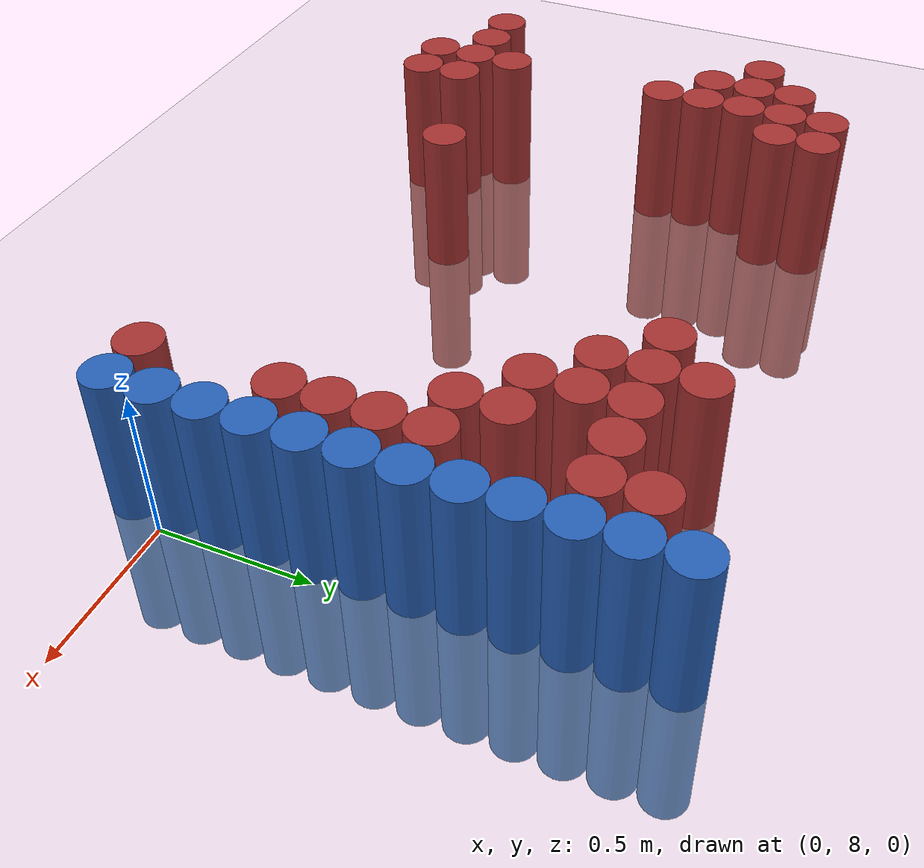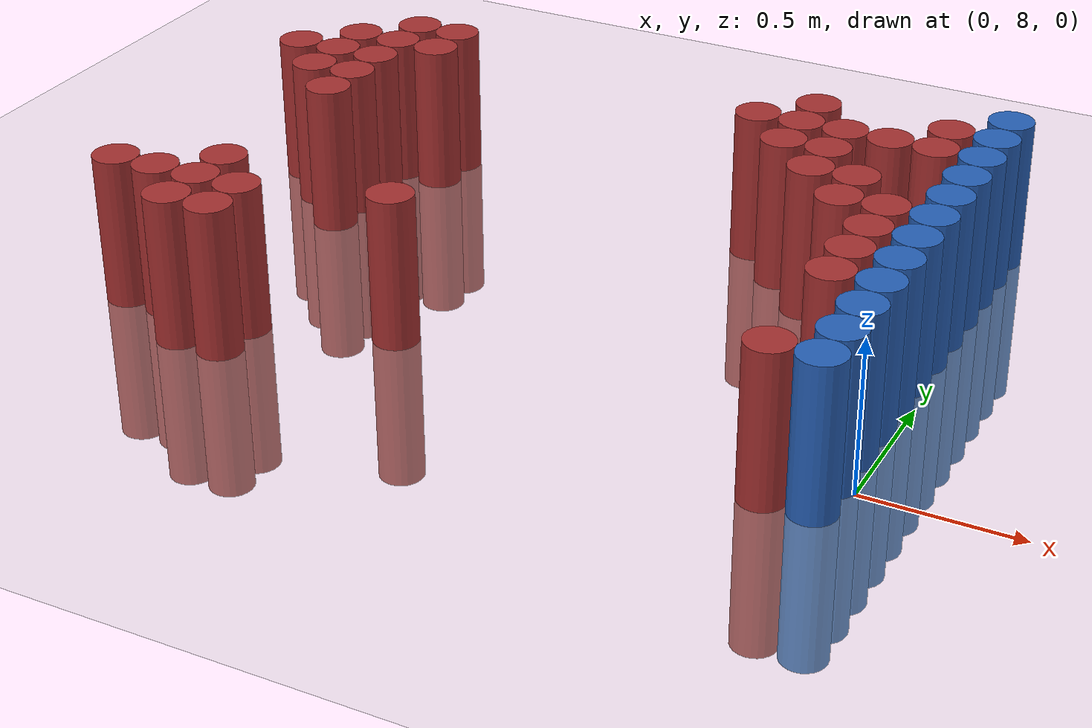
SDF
<sdf version="1.6">
 <world name="default">
  <model name="ground_plane">
   <static>1</static>
   <link name="link">
    <collision name="collision">
     <geometry><plane><normal>0 0 1</normal><size>100 100</size></plane></geometry>
     <surface><friction><ode><mu>100</mu><mu2>50</mu2></ode></friction></surface>
    </collision>
    <visual name="visual">
     <cast_shadows>0</cast_shadows>
     <geometry><plane><normal>0 0 1</normal><size>100 100</size></plane></geometry>
     <material>
      <script><uri>file://media/materials/scripts/gazebo.material</uri><name>Gazebo/Grey</name></script>
     </material>
    </visual>
   </link>
  </model>
  <model name="unit_cylinder_228">
   <static>1</static>
   <pose>-2.475000 8.025000 0.000000 0.000000 0.000000 0.000000</pose>
   <link name="link">
    <inertial>
     <mass>1</mass>
     <inertia><ixx>0.145833</ixx><ixy>0</ixy><ixz>0</ixz><iyy>0.145833</iyy><iyz>0</iyz><izz>0.125</izz></inertia>
    </inertial>
    <collision name="collision">
     <geometry><cylinder><radius>0.075000</radius><length>1</length></cylinder></geometry>
    </collision>
    <visual name="visual">
     <geometry><cylinder><radius>0.075000</radius><length>1</length></cylinder></geometry>
     <material>
      <ambient>0.648000 0.192000 0.192000 1</ambient>
      <diffuse>0.648000 0.192000 0.192000 1</diffuse>
     </material>
     <material>
      <script><name>Gazebo/Grey</name><uri>file://media/materials/scripts/gazebo.material</uri></script>
     </material>
    </visual>
   </link>
  </model>
  <model name="unit_cylinder_229">
   <static>1</static>
   <pose>-2.475000 9.075000 0.000000 0.000000 0.000000 0.000000</pose>
   <link name="link">
    <inertial>
     <mass>1</mass>
     <inertia><ixx>0.145833</ixx><ixy>0</ixy><ixz>0</ixz><iyy>0.145833</iyy><iyz>0</iyz><izz>0.125</izz></inertia>
    </inertial>
    <collision name="collision">
     <geometry><cylinder><radius>0.075000</radius><length>1</length></cylinder></geometry>
    </collision>
    <visual name="visual">
     <geometry><cylinder><radius>0.075000</radius><length>1</length></cylinder></geometry>
     <material>
      <ambient>0.648000 0.192000 0.192000 1</ambient>
      <diffuse>0.648000 0.192000 0.192000 1</diffuse>
     </material>
     <material>
      <script><name>Gazebo/Grey</name><uri>file://media/materials/scripts/gazebo.material</uri></script>
     </material>
    </visual>
   </link>
  </model>
  <model name="unit_cylinder_236">
   <static>1</static>
   <pose>-2.325000 8.025000 0.000000 0.000000 0.000000 0.000000</pose>
   <link name="link">
    <inertial>
     <mass>1</mass>
     <inertia><ixx>0.145833</ixx><ixy>0</ixy><ixz>0</ixz><iyy>0.145833</iyy><iyz>0</iyz><izz>0.125</izz></inertia>
    </inertial>
    <collision name="collision">
     <geometry><cylinder><radius>0.075000</radius><length>1</length></cylinder></geometry>
    </collision>
    <visual name="visual">
     <geometry><cylinder><radius>0.075000</radius><length>1</length></cylinder></geometry>
     <material>
      <ambient>0.648000 0.192000 0.192000 1</ambient>
      <diffuse>0.648000 0.192000 0.192000 1</diffuse>
     </material>
     <material>
      <script><name>Gazebo/Grey</name><uri>file://media/materials/scripts/gazebo.material</uri></script>
     </material>
    </visual>
   </link>
  </model>
  <model name="unit_cylinder_237">
   <static>1</static>
   <pose>-2.325000 8.925000 0.000000 0.000000 0.000000 0.000000</pose>
   <link name="link">
    <inertial>
     <mass>1</mass>
     <inertia><ixx>0.145833</ixx><ixy>0</ixy><ixz>0</ixz><iyy>0.145833</iyy><iyz>0</iyz><izz>0.125</izz></inertia>
    </inertial>
    <collision name="collision">
     <geometry><cylinder><radius>0.075000</radius><length>1</length></cylinder></geometry>
    </collision>
    <visual name="visual">
     <geometry><cylinder><radius>0.075000</radius><length>1</length></cylinder></geometry>
     <material>
      <ambient>0.648000 0.192000 0.192000 1</ambient>
      <diffuse>0.648000 0.192000 0.192000 1</diffuse>
     </material>
     <material>
      <script><name>Gazebo/Grey</name><uri>file://media/materials/scripts/gazebo.material</uri></script>
     </material>
    </visual>
   </link>
  </model>
  <model name="unit_cylinder_238">
   <static>1</static>
   <pose>-2.325000 9.075000 0.000000 0.000000 0.000000 0.000000</pose>
   <link name="link">
    <inertial>
     <mass>1</mass>
     <inertia><ixx>0.145833</ixx><ixy>0</ixy><ixz>0</ixz><iyy>0.145833</iyy><iyz>0</iyz><izz>0.125</izz></inertia>
    </inertial>
    <collision name="collision">
     <geometry><cylinder><radius>0.075000</radius><length>1</length></cylinder></geometry>
    </collision>
    <visual name="visual">
     <geometry><cylinder><radius>0.075000</radius><length>1</length></cylinder></geometry>
     <material>
      <ambient>0.648000 0.192000 0.192000 1</ambient>
      <diffuse>0.648000 0.192000 0.192000 1</diffuse>
     </material>
     <material>
      <script><name>Gazebo/Grey</name><uri>file://media/materials/scripts/gazebo.material</uri></script>
     </material>
    </visual>
   </link>
  </model>
  <model name="unit_cylinder_239">
   <static>1</static>
   <pose>-2.325000 9.225000 0.000000 0.000000 0.000000 0.000000</pose>
   <link name="link">
    <inertial>
     <mass>1</mass>
     <inertia><ixx>0.145833</ixx><ixy>0</ixy><ixz>0</ixz><iyy>0.145833</iyy><iyz>0</iyz><izz>0.125</izz></inertia>
    </inertial>
    <collision name="collision">
     <geometry><cylinder><radius>0.075000</radius><length>1</length></cylinder></geometry>
    </collision>
    <visual name="visual">
     <geometry><cylinder><radius>0.075000</radius><length>1</length></cylinder></geometry>
     <material>
      <ambient>0.648000 0.192000 0.192000 1</ambient>
      <diffuse>0.648000 0.192000 0.192000 1</diffuse>
     </material>
     <material>
      <script><name>Gazebo/Grey</name><uri>file://media/materials/scripts/gazebo.material</uri></script>
     </material>
    </visual>
   </link>
  </model>
  <model name="unit_cylinder_244">
   <static>1</static>
   <pose>-2.175000 7.875000 0.000000 0.000000 0.000000 0.000000</pose>
   <link name="link">
    <inertial>
     <mass>1</mass>
     <inertia><ixx>0.145833</ixx><ixy>0</ixy><ixz>0</ixz><iyy>0.145833</iyy><iyz>0</iyz><izz>0.125</izz></inertia>
    </inertial>
    <collision name="collision">
     <geometry><cylinder><radius>0.075000</radius><length>1</length></cylinder></geometry>
    </collision>
    <visual name="visual">
     <geometry><cylinder><radius>0.075000</radius><length>1</length></cylinder></geometry>
     <material>
      <ambient>0.648000 0.192000 0.192000 1</ambient>
      <diffuse>0.648000 0.192000 0.192000 1</diffuse>
     </material>
     <material>
      <script><name>Gazebo/Grey</name><uri>file://media/materials/scripts/gazebo.material</uri></script>
     </material>
    </visual>
   </link>
  </model>
  <model name="unit_cylinder_245">
   <static>1</static>
   <pose>-2.175000 8.025000 0.000000 0.000000 0.000000 0.000000</pose>
   <link name="link">
    <inertial>
     <mass>1</mass>
     <inertia><ixx>0.145833</ixx><ixy>0</ixy><ixz>0</ixz><iyy>0.145833</iyy><iyz>0</iyz><izz>0.125</izz></inertia>
    </inertial>
    <collision name="collision">
     <geometry><cylinder><radius>0.075000</radius><length>1</length></cylinder></geometry>
    </collision>
    <visual name="visual">
     <geometry><cylinder><radius>0.075000</radius><length>1</length></cylinder></geometry>
     <material>
      <ambient>0.648000 0.192000 0.192000 1</ambient>
      <diffuse>0.648000 0.192000 0.192000 1</diffuse>
     </material>
     <material>
      <script><name>Gazebo/Grey</name><uri>file://media/materials/scripts/gazebo.material</uri></script>
     </material>
    </visual>
   </link>
  </model>
  <model name="unit_cylinder_246">
   <static>1</static>
   <pose>-2.175000 8.175000 0.000000 0.000000 0.000000 0.000000</pose>
   <link name="link">
    <inertial>
     <mass>1</mass>
     <inertia><ixx>0.145833</ixx><ixy>0</ixy><ixz>0</ixz><iyy>0.145833</iyy><iyz>0</iyz><izz>0.125</izz></inertia>
    </inertial>
    <collision name="collision">
     <geometry><cylinder><radius>0.075000</radius><length>1</length></cylinder></geometry>
    </collision>
    <visual name="visual">
     <geometry><cylinder><radius>0.075000</radius><length>1</length></cylinder></geometry>
     <material>
      <ambient>0.648000 0.192000 0.192000 1</ambient>
      <diffuse>0.648000 0.192000 0.192000 1</diffuse>
     </material>
     <material>
      <script><name>Gazebo/Grey</name><uri>file://media/materials/scripts/gazebo.material</uri></script>
     </material>
    </visual>
   </link>
  </model>
  <model name="unit_cylinder_247">
   <static>1</static>
   <pose>-2.175000 8.775000 0.000000 0.000000 0.000000 0.000000</pose>
   <link name="link">
    <inertial>
     <mass>1</mass>
     <inertia><ixx>0.145833</ixx><ixy>0</ixy><ixz>0</ixz><iyy>0.145833</iyy><iyz>0</iyz><izz>0.125</izz></inertia>
    </inertial>
    <collision name="collision">
     <geometry><cylinder><radius>0.075000</radius><length>1</length></cylinder></geometry>
    </collision>
    <visual name="visual">
     <geometry><cylinder><radius>0.075000</radius><length>1</length></cylinder></geometry>
     <material>
      <ambient>0.648000 0.192000 0.192000 1</ambient>
      <diffuse>0.648000 0.192000 0.192000 1</diffuse>
     </material>
     <material>
      <script><name>Gazebo/Grey</name><uri>file://media/materials/scripts/gazebo.material</uri></script>
     </material>
    </visual>
   </link>
  </model>
  <model name="unit_cylinder_248">
   <static>1</static>
   <pose>-2.175000 8.925000 0.000000 0.000000 0.000000 0.000000</pose>
   <link name="link">
    <inertial>
     <mass>1</mass>
     <inertia><ixx>0.145833</ixx><ixy>0</ixy><ixz>0</ixz><iyy>0.145833</iyy><iyz>0</iyz><izz>0.125</izz></inertia>
    </inertial>
    <collision name="collision">
     <geometry><cylinder><radius>0.075000</radius><length>1</length></cylinder></geometry>
    </collision>
    <visual name="visual">
     <geometry><cylinder><radius>0.075000</radius><length>1</length></cylinder></geometry>
     <material>
      <ambient>0.648000 0.192000 0.192000 1</ambient>
      <diffuse>0.648000 0.192000 0.192000 1</diffuse>
     </material>
     <material>
      <script><name>Gazebo/Grey</name><uri>file://media/materials/scripts/gazebo.material</uri></script>
     </material>
    </visual>
   </link>
  </model>
  <model name="unit_cylinder_249">
   <static>1</static>
   <pose>-2.175000 9.075000 0.000000 0.000000 0.000000 0.000000</pose>
   <link name="link">
    <inertial>
     <mass>1</mass>
     <inertia><ixx>0.145833</ixx><ixy>0</ixy><ixz>0</ixz><iyy>0.145833</iyy><iyz>0</iyz><izz>0.125</izz></inertia>
    </inertial>
    <collision name="collision">
     <geometry><cylinder><radius>0.075000</radius><length>1</length></cylinder></geometry>
    </collision>
    <visual name="visual">
     <geometry><cylinder><radius>0.075000</radius><length>1</length></cylinder></geometry>
     <material>
      <ambient>0.648000 0.192000 0.192000 1</ambient>
      <diffuse>0.648000 0.192000 0.192000 1</diffuse>
     </material>
     <material>
      <script><name>Gazebo/Grey</name><uri>file://media/materials/scripts/gazebo.material</uri></script>
     </material>
    </visual>
   </link>
  </model>
  <model name="unit_cylinder_250">
   <static>1</static>
   <pose>-2.175000 9.225000 0.000000 0.000000 0.000000 0.000000</pose>
   <link name="link">
    <inertial>
     <mass>1</mass>
     <inertia><ixx>0.145833</ixx><ixy>0</ixy><ixz>0</ixz><iyy>0.145833</iyy><iyz>0</iyz><izz>0.125</izz></inertia>
    </inertial>
    <collision name="collision">
     <geometry><cylinder><radius>0.075000</radius><length>1</length></cylinder></geometry>
    </collision>
    <visual name="visual">
     <geometry><cylinder><radius>0.075000</radius><length>1</length></cylinder></geometry>
     <material>
      <ambient>0.648000 0.192000 0.192000 1</ambient>
      <diffuse>0.648000 0.192000 0.192000 1</diffuse>
     </material>
     <material>
      <script><name>Gazebo/Grey</name><uri>file://media/materials/scripts/gazebo.material</uri></script>
     </material>
    </visual>
   </link>
  </model>
  <model name="unit_cylinder_251">
   <static>1</static>
   <pose>-2.175000 9.375000 0.000000 0.000000 0.000000 0.000000</pose>
   <link name="link">
    <inertial>
     <mass>1</mass>
     <inertia><ixx>0.145833</ixx><ixy>0</ixy><ixz>0</ixz><iyy>0.145833</iyy><iyz>0</iyz><izz>0.125</izz></inertia>
    </inertial>
    <collision name="collision">
     <geometry><cylinder><radius>0.075000</radius><length>1</length></cylinder></geometry>
    </collision>
    <visual name="visual">
     <geometry><cylinder><radius>0.075000</radius><length>1</length></cylinder></geometry>
     <material>
      <ambient>0.648000 0.192000 0.192000 1</ambient>
      <diffuse>0.648000 0.192000 0.192000 1</diffuse>
     </material>
     <material>
      <script><name>Gazebo/Grey</name><uri>file://media/materials/scripts/gazebo.material</uri></script>
     </material>
    </visual>
   </link>
  </model>
  <model name="unit_cylinder_252">
   <static>1</static>
   <pose>-2.025000 7.875000 0.000000 0.000000 0.000000 0.000000</pose>
   <link name="link">
    <inertial>
     <mass>1</mass>
     <inertia><ixx>0.145833</ixx><ixy>0</ixy><ixz>0</ixz><iyy>0.145833</iyy><iyz>0</iyz><izz>0.125</izz></inertia>
    </inertial>
    <collision name="collision">
     <geometry><cylinder><radius>0.075000</radius><length>1</length></cylinder></geometry>
    </collision>
    <visual name="visual">
     <geometry><cylinder><radius>0.075000</radius><length>1</length></cylinder></geometry>
     <material>
      <ambient>0.648000 0.192000 0.192000 1</ambient>
      <diffuse>0.648000 0.192000 0.192000 1</diffuse>
     </material>
     <material>
      <script><name>Gazebo/Grey</name><uri>file://media/materials/scripts/gazebo.material</uri></script>
     </material>
    </visual>
   </link>
  </model>
  <model name="unit_cylinder_253">
   <static>1</static>
   <pose>-2.025000 8.025000 0.000000 0.000000 0.000000 0.000000</pose>
   <link name="link">
    <inertial>
     <mass>1</mass>
     <inertia><ixx>0.145833</ixx><ixy>0</ixy><ixz>0</ixz><iyy>0.145833</iyy><iyz>0</iyz><izz>0.125</izz></inertia>
    </inertial>
    <collision name="collision">
     <geometry><cylinder><radius>0.075000</radius><length>1</length></cylinder></geometry>
    </collision>
    <visual name="visual">
     <geometry><cylinder><radius>0.075000</radius><length>1</length></cylinder></geometry>
     <material>
      <ambient>0.648000 0.192000 0.192000 1</ambient>
      <diffuse>0.648000 0.192000 0.192000 1</diffuse>
     </material>
     <material>
      <script><name>Gazebo/Grey</name><uri>file://media/materials/scripts/gazebo.material</uri></script>
     </material>
    </visual>
   </link>
  </model>
  <model name="unit_cylinder_254">
   <static>1</static>
   <pose>-2.025000 9.225000 0.000000 0.000000 0.000000 0.000000</pose>
   <link name="link">
    <inertial>
     <mass>1</mass>
     <inertia><ixx>0.145833</ixx><ixy>0</ixy><ixz>0</ixz><iyy>0.145833</iyy><iyz>0</iyz><izz>0.125</izz></inertia>
    </inertial>
    <collision name="collision">
     <geometry><cylinder><radius>0.075000</radius><length>1</length></cylinder></geometry>
    </collision>
    <visual name="visual">
     <geometry><cylinder><radius>0.075000</radius><length>1</length></cylinder></geometry>
     <material>
      <ambient>0.648000 0.192000 0.192000 1</ambient>
      <diffuse>0.648000 0.192000 0.192000 1</diffuse>
     </material>
     <material>
      <script><name>Gazebo/Grey</name><uri>file://media/materials/scripts/gazebo.material</uri></script>
     </material>
    </visual>
   </link>
  </model>
  <model name="unit_cylinder_255">
   <static>1</static>
   <pose>-2.025000 9.375000 0.000000 0.000000 0.000000 0.000000</pose>
   <link name="link">
    <inertial>
     <mass>1</mass>
     <inertia><ixx>0.145833</ixx><ixy>0</ixy><ixz>0</ixz><iyy>0.145833</iyy><iyz>0</iyz><izz>0.125</izz></inertia>
    </inertial>
    <collision name="collision">
     <geometry><cylinder><radius>0.075000</radius><length>1</length></cylinder></geometry>
    </collision>
    <visual name="visual">
     <geometry><cylinder><radius>0.075000</radius><length>1</length></cylinder></geometry>
     <material>
      <ambient>0.648000 0.192000 0.192000 1</ambient>
      <diffuse>0.648000 0.192000 0.192000 1</diffuse>
     </material>
     <material>
      <script><name>Gazebo/Grey</name><uri>file://media/materials/scripts/gazebo.material</uri></script>
     </material>
    </visual>
   </link>
  </model>
  <model name="unit_cylinder_262">
   <static>1</static>
   <pose>-1.575000 8.175000 0.000000 0.000000 0.000000 0.000000</pose>
   <link name="link">
    <inertial>
     <mass>1</mass>
     <inertia><ixx>0.145833</ixx><ixy>0</ixy><ixz>0</ixz><iyy>0.145833</iyy><iyz>0</iyz><izz>0.125</izz></inertia>
    </inertial>
    <collision name="collision">
     <geometry><cylinder><radius>0.075000</radius><length>1</length></cylinder></geometry>
    </collision>
    <visual name="visual">
     <geometry><cylinder><radius>0.075000</radius><length>1</length></cylinder></geometry>
     <material>
      <ambient>0.648000 0.192000 0.192000 1</ambient>
      <diffuse>0.648000 0.192000 0.192000 1</diffuse>
     </material>
     <material>
      <script><name>Gazebo/Grey</name><uri>file://media/materials/scripts/gazebo.material</uri></script>
     </material>
    </visual>
   </link>
  </model>
  <model name="unit_cylinder_274">
   <static>1</static>
   <pose>-0.825000 9.225000 0.000000 0.000000 0.000000 0.000000</pose>
   <link name="link">
    <inertial>
     <mass>1</mass>
     <inertia><ixx>0.145833</ixx><ixy>0</ixy><ixz>0</ixz><iyy>0.145833</iyy><iyz>0</iyz><izz>0.125</izz></inertia>
    </inertial>
    <collision name="collision">
     <geometry><cylinder><radius>0.075000</radius><length>1</length></cylinder></geometry>
    </collision>
    <visual name="visual">
     <geometry><cylinder><radius>0.075000</radius><length>1</length></cylinder></geometry>
     <material>
      <ambient>0.648000 0.192000 0.192000 1</ambient>
      <diffuse>0.648000 0.192000 0.192000 1</diffuse>
     </material>
     <material>
      <script><name>Gazebo/Grey</name><uri>file://media/materials/scripts/gazebo.material</uri></script>
     </material>
    </visual>
   </link>
  </model>
  <model name="unit_cylinder_277">
   <static>1</static>
   <pose>-0.675000 9.075000 0.000000 0.000000 0.000000 0.000000</pose>
   <link name="link">
    <inertial>
     <mass>1</mass>
     <inertia><ixx>0.145833</ixx><ixy>0</ixy><ixz>0</ixz><iyy>0.145833</iyy><iyz>0</iyz><izz>0.125</izz></inertia>
    </inertial>
    <collision name="collision">
     <geometry><cylinder><radius>0.075000</radius><length>1</length></cylinder></geometry>
    </collision>
    <visual name="visual">
     <geometry><cylinder><radius>0.075000</radius><length>1</length></cylinder></geometry>
     <material>
      <ambient>0.648000 0.192000 0.192000 1</ambient>
      <diffuse>0.648000 0.192000 0.192000 1</diffuse>
     </material>
     <material>
      <script><name>Gazebo/Grey</name><uri>file://media/materials/scripts/gazebo.material</uri></script>
     </material>
    </visual>
   </link>
  </model>
  <model name="unit_cylinder_278">
   <static>1</static>
   <pose>-0.675000 9.225000 0.000000 0.000000 0.000000 0.000000</pose>
   <link name="link">
    <inertial>
     <mass>1</mass>
     <inertia><ixx>0.145833</ixx><ixy>0</ixy><ixz>0</ixz><iyy>0.145833</iyy><iyz>0</iyz><izz>0.125</izz></inertia>
    </inertial>
    <collision name="collision">
     <geometry><cylinder><radius>0.075000</radius><length>1</length></cylinder></geometry>
    </collision>
    <visual name="visual">
     <geometry><cylinder><radius>0.075000</radius><length>1</length></cylinder></geometry>
     <material>
      <ambient>0.648000 0.192000 0.192000 1</ambient>
      <diffuse>0.648000 0.192000 0.192000 1</diffuse>
     </material>
     <material>
      <script><name>Gazebo/Grey</name><uri>file://media/materials/scripts/gazebo.material</uri></script>
     </material>
    </visual>
   </link>
  </model>
  <model name="unit_cylinder_279">
   <static>1</static>
   <pose>-0.675000 9.375000 0.000000 0.000000 0.000000 0.000000</pose>
   <link name="link">
    <inertial>
     <mass>1</mass>
     <inertia><ixx>0.145833</ixx><ixy>0</ixy><ixz>0</ixz><iyy>0.145833</iyy><iyz>0</iyz><izz>0.125</izz></inertia>
    </inertial>
    <collision name="collision">
     <geometry><cylinder><radius>0.075000</radius><length>1</length></cylinder></geometry>
    </collision>
    <visual name="visual">
     <geometry><cylinder><radius>0.075000</radius><length>1</length></cylinder></geometry>
     <material>
      <ambient>0.648000 0.192000 0.192000 1</ambient>
      <diffuse>0.648000 0.192000 0.192000 1</diffuse>
     </material>
     <material>
      <script><name>Gazebo/Grey</name><uri>file://media/materials/scripts/gazebo.material</uri></script>
     </material>
    </visual>
   </link>
  </model>
  <model name="unit_cylinder_282">
   <static>1</static>
   <pose>-0.525000 8.925000 0.000000 0.000000 0.000000 0.000000</pose>
   <link name="link">
    <inertial>
     <mass>1</mass>
     <inertia><ixx>0.145833</ixx><ixy>0</ixy><ixz>0</ixz><iyy>0.145833</iyy><iyz>0</iyz><izz>0.125</izz></inertia>
    </inertial>
    <collision name="collision">
     <geometry><cylinder><radius>0.075000</radius><length>1</length></cylinder></geometry>
    </collision>
    <visual name="visual">
     <geometry><cylinder><radius>0.075000</radius><length>1</length></cylinder></geometry>
     <material>
      <ambient>0.648000 0.192000 0.192000 1</ambient>
      <diffuse>0.648000 0.192000 0.192000 1</diffuse>
     </material>
     <material>
      <script><name>Gazebo/Grey</name><uri>file://media/materials/scripts/gazebo.material</uri></script>
     </material>
    </visual>
   </link>
  </model>
  <model name="unit_cylinder_283">
   <static>1</static>
   <pose>-0.525000 9.075000 0.000000 0.000000 0.000000 0.000000</pose>
   <link name="link">
    <inertial>
     <mass>1</mass>
     <inertia><ixx>0.145833</ixx><ixy>0</ixy><ixz>0</ixz><iyy>0.145833</iyy><iyz>0</iyz><izz>0.125</izz></inertia>
    </inertial>
    <collision name="collision">
     <geometry><cylinder><radius>0.075000</radius><length>1</length></cylinder></geometry>
    </collision>
    <visual name="visual">
     <geometry><cylinder><radius>0.075000</radius><length>1</length></cylinder></geometry>
     <material>
      <ambient>0.648000 0.192000 0.192000 1</ambient>
      <diffuse>0.648000 0.192000 0.192000 1</diffuse>
     </material>
     <material>
      <script><name>Gazebo/Grey</name><uri>file://media/materials/scripts/gazebo.material</uri></script>
     </material>
    </visual>
   </link>
  </model>
  <model name="unit_cylinder_284">
   <static>1</static>
   <pose>-0.525000 9.225000 0.000000 0.000000 0.000000 0.000000</pose>
   <link name="link">
    <inertial>
     <mass>1</mass>
     <inertia><ixx>0.145833</ixx><ixy>0</ixy><ixz>0</ixz><iyy>0.145833</iyy><iyz>0</iyz><izz>0.125</izz></inertia>
    </inertial>
    <collision name="collision">
     <geometry><cylinder><radius>0.075000</radius><length>1</length></cylinder></geometry>
    </collision>
    <visual name="visual">
     <geometry><cylinder><radius>0.075000</radius><length>1</length></cylinder></geometry>
     <material>
      <ambient>0.648000 0.192000 0.192000 1</ambient>
      <diffuse>0.648000 0.192000 0.192000 1</diffuse>
     </material>
     <material>
      <script><name>Gazebo/Grey</name><uri>file://media/materials/scripts/gazebo.material</uri></script>
     </material>
    </visual>
   </link>
  </model>
  <model name="unit_cylinder_289">
   <static>1</static>
   <pose>-0.375000 8.775000 0.000000 0.000000 0.000000 0.000000</pose>
   <link name="link">
    <inertial>
     <mass>1</mass>
     <inertia><ixx>0.145833</ixx><ixy>0</ixy><ixz>0</ixz><iyy>0.145833</iyy><iyz>0</iyz><izz>0.125</izz></inertia>
    </inertial>
    <collision name="collision">
     <geometry><cylinder><radius>0.075000</radius><length>1</length></cylinder></geometry>
    </collision>
    <visual name="visual">
     <geometry><cylinder><radius>0.075000</radius><length>1</length></cylinder></geometry>
     <material>
      <ambient>0.648000 0.192000 0.192000 1</ambient>
      <diffuse>0.648000 0.192000 0.192000 1</diffuse>
     </material>
     <material>
      <script><name>Gazebo/Grey</name><uri>file://media/materials/scripts/gazebo.material</uri></script>
     </material>
    </visual>
   </link>
  </model>
  <model name="unit_cylinder_290">
   <static>1</static>
   <pose>-0.375000 8.925000 0.000000 0.000000 0.000000 0.000000</pose>
   <link name="link">
    <inertial>
     <mass>1</mass>
     <inertia><ixx>0.145833</ixx><ixy>0</ixy><ixz>0</ixz><iyy>0.145833</iyy><iyz>0</iyz><izz>0.125</izz></inertia>
    </inertial>
    <collision name="collision">
     <geometry><cylinder><radius>0.075000</radius><length>1</length></cylinder></geometry>
    </collision>
    <visual name="visual">
     <geometry><cylinder><radius>0.075000</radius><length>1</length></cylinder></geometry>
     <material>
      <ambient>0.648000 0.192000 0.192000 1</ambient>
      <diffuse>0.648000 0.192000 0.192000 1</diffuse>
     </material>
     <material>
      <script><name>Gazebo/Grey</name><uri>file://media/materials/scripts/gazebo.material</uri></script>
     </material>
    </visual>
   </link>
  </model>
  <model name="unit_cylinder_291">
   <static>1</static>
   <pose>-0.375000 9.225000 0.000000 0.000000 0.000000 0.000000</pose>
   <link name="link">
    <inertial>
     <mass>1</mass>
     <inertia><ixx>0.145833</ixx><ixy>0</ixy><ixz>0</ixz><iyy>0.145833</iyy><iyz>0</iyz><izz>0.125</izz></inertia>
    </inertial>
    <collision name="collision">
     <geometry><cylinder><radius>0.075000</radius><length>1</length></cylinder></geometry>
    </collision>
    <visual name="visual">
     <geometry><cylinder><radius>0.075000</radius><length>1</length></cylinder></geometry>
     <material>
      <ambient>0.648000 0.192000 0.192000 1</ambient>
      <diffuse>0.648000 0.192000 0.192000 1</diffuse>
     </material>
     <material>
      <script><name>Gazebo/Grey</name><uri>file://media/materials/scripts/gazebo.material</uri></script>
     </material>
    </visual>
   </link>
  </model>
  <model name="unit_cylinder_300">
   <static>1</static>
   <pose>-0.225000 7.875000 0.000000 0.000000 0.000000 0.000000</pose>
   <link name="link">
    <inertial>
     <mass>1</mass>
     <inertia><ixx>0.145833</ixx><ixy>0</ixy><ixz>0</ixz><iyy>0.145833</iyy><iyz>0</iyz><izz>0.125</izz></inertia>
    </inertial>
    <collision name="collision">
     <geometry><cylinder><radius>0.075000</radius><length>1</length></cylinder></geometry>
    </collision>
    <visual name="visual">
     <geometry><cylinder><radius>0.075000</radius><length>1</length></cylinder></geometry>
     <material>
      <ambient>0.648000 0.192000 0.192000 1</ambient>
      <diffuse>0.648000 0.192000 0.192000 1</diffuse>
     </material>
     <material>
      <script><name>Gazebo/Grey</name><uri>file://media/materials/scripts/gazebo.material</uri></script>
     </material>
    </visual>
   </link>
  </model>
  <model name="unit_cylinder_301">
   <static>1</static>
   <pose>-0.225000 8.325000 0.000000 0.000000 0.000000 0.000000</pose>
   <link name="link">
    <inertial>
     <mass>1</mass>
     <inertia><ixx>0.145833</ixx><ixy>0</ixy><ixz>0</ixz><iyy>0.145833</iyy><iyz>0</iyz><izz>0.125</izz></inertia>
    </inertial>
    <collision name="collision">
     <geometry><cylinder><radius>0.075000</radius><length>1</length></cylinder></geometry>
    </collision>
    <visual name="visual">
     <geometry><cylinder><radius>0.075000</radius><length>1</length></cylinder></geometry>
     <material>
      <ambient>0.648000 0.192000 0.192000 1</ambient>
      <diffuse>0.648000 0.192000 0.192000 1</diffuse>
     </material>
     <material>
      <script><name>Gazebo/Grey</name><uri>file://media/materials/scripts/gazebo.material</uri></script>
     </material>
    </visual>
   </link>
  </model>
  <model name="unit_cylinder_302">
   <static>1</static>
   <pose>-0.225000 8.475000 0.000000 0.000000 0.000000 0.000000</pose>
   <link name="link">
    <inertial>
     <mass>1</mass>
     <inertia><ixx>0.145833</ixx><ixy>0</ixy><ixz>0</ixz><iyy>0.145833</iyy><iyz>0</iyz><izz>0.125</izz></inertia>
    </inertial>
    <collision name="collision">
     <geometry><cylinder><radius>0.075000</radius><length>1</length></cylinder></geometry>
    </collision>
    <visual name="visual">
     <geometry><cylinder><radius>0.075000</radius><length>1</length></cylinder></geometry>
     <material>
      <ambient>0.648000 0.192000 0.192000 1</ambient>
      <diffuse>0.648000 0.192000 0.192000 1</diffuse>
     </material>
     <material>
      <script><name>Gazebo/Grey</name><uri>file://media/materials/scripts/gazebo.material</uri></script>
     </material>
    </visual>
   </link>
  </model>
  <model name="unit_cylinder_303">
   <static>1</static>
   <pose>-0.225000 8.625000 0.000000 0.000000 0.000000 0.000000</pose>
   <link name="link">
    <inertial>
     <mass>1</mass>
     <inertia><ixx>0.145833</ixx><ixy>0</ixy><ixz>0</ixz><iyy>0.145833</iyy><iyz>0</iyz><izz>0.125</izz></inertia>
    </inertial>
    <collision name="collision">
     <geometry><cylinder><radius>0.075000</radius><length>1</length></cylinder></geometry>
    </collision>
    <visual name="visual">
     <geometry><cylinder><radius>0.075000</radius><length>1</length></cylinder></geometry>
     <material>
      <ambient>0.648000 0.192000 0.192000 1</ambient>
      <diffuse>0.648000 0.192000 0.192000 1</diffuse>
     </material>
     <material>
      <script><name>Gazebo/Grey</name><uri>file://media/materials/scripts/gazebo.material</uri></script>
     </material>
    </visual>
   </link>
  </model>
  <model name="unit_cylinder_304">
   <static>1</static>
   <pose>-0.225000 8.775000 0.000000 0.000000 0.000000 0.000000</pose>
   <link name="link">
    <inertial>
     <mass>1</mass>
     <inertia><ixx>0.145833</ixx><ixy>0</ixy><ixz>0</ixz><iyy>0.145833</iyy><iyz>0</iyz><izz>0.125</izz></inertia>
    </inertial>
    <collision name="collision">
     <geometry><cylinder><radius>0.075000</radius><length>1</length></cylinder></geometry>
    </collision>
    <visual name="visual">
     <geometry><cylinder><radius>0.075000</radius><length>1</length></cylinder></geometry>
     <material>
      <ambient>0.648000 0.192000 0.192000 1</ambient>
      <diffuse>0.648000 0.192000 0.192000 1</diffuse>
     </material>
     <material>
      <script><name>Gazebo/Grey</name><uri>file://media/materials/scripts/gazebo.material</uri></script>
     </material>
    </visual>
   </link>
  </model>
  <model name="unit_cylinder_305">
   <static>1</static>
   <pose>-0.225000 9.225000 0.000000 0.000000 0.000000 0.000000</pose>
   <link name="link">
    <inertial>
     <mass>1</mass>
     <inertia><ixx>0.145833</ixx><ixy>0</ixy><ixz>0</ixz><iyy>0.145833</iyy><iyz>0</iyz><izz>0.125</izz></inertia>
    </inertial>
    <collision name="collision">
     <geometry><cylinder><radius>0.075000</radius><length>1</length></cylinder></geometry>
    </collision>
    <visual name="visual">
     <geometry><cylinder><radius>0.075000</radius><length>1</length></cylinder></geometry>
     <material>
      <ambient>0.648000 0.192000 0.192000 1</ambient>
      <diffuse>0.648000 0.192000 0.192000 1</diffuse>
     </material>
     <material>
      <script><name>Gazebo/Grey</name><uri>file://media/materials/scripts/gazebo.material</uri></script>
     </material>
    </visual>
   </link>
  </model>
  <model name="unit_cylinder_306">
   <static>1</static>
   <pose>-0.225000 9.375000 0.000000 0.000000 0.000000 0.000000</pose>
   <link name="link">
    <inertial>
     <mass>1</mass>
     <inertia><ixx>0.145833</ixx><ixy>0</ixy><ixz>0</ixz><iyy>0.145833</iyy><iyz>0</iyz><izz>0.125</izz></inertia>
    </inertial>
    <collision name="collision">
     <geometry><cylinder><radius>0.075000</radius><length>1</length></cylinder></geometry>
    </collision>
    <visual name="visual">
     <geometry><cylinder><radius>0.075000</radius><length>1</length></cylinder></geometry>
     <material>
      <ambient>0.648000 0.192000 0.192000 1</ambient>
      <diffuse>0.648000 0.192000 0.192000 1</diffuse>
     </material>
     <material>
      <script><name>Gazebo/Grey</name><uri>file://media/materials/scripts/gazebo.material</uri></script>
     </material>
    </visual>
   </link>
  </model>
  <model name="unit_cylinder_325">
   <static>1</static>
   <pose>-0.075000 7.875000 0.000000 0.000000 0.000000 0.000000</pose>
   <link name="link">
    <inertial>
     <mass>1</mass>
     <inertia><ixx>0.145833</ixx><ixy>0</ixy><ixz>0</ixz><iyy>0.145833</iyy><iyz>0</iyz><izz>0.125</izz></inertia>
    </inertial>
    <collision name="collision">
     <geometry><cylinder><radius>0.075000</radius><length>1</length></cylinder></geometry>
    </collision>
    <visual name="visual">
     <geometry><cylinder><radius>0.075000</radius><length>1</length></cylinder></geometry>
     <material>
      <ambient>0.152000 0.379000 0.720000 1</ambient>
      <diffuse>0.152000 0.379000 0.720000 1</diffuse>
     </material>
     <material>
      <script><name>Gazebo/Grey</name><uri>file://media/materials/scripts/gazebo.material</uri></script>
     </material>
    </visual>
   </link>
  </model>
  <model name="unit_cylinder_326">
   <static>1</static>
   <pose>-0.075000 8.025000 0.000000 0.000000 0.000000 0.000000</pose>
   <link name="link">
    <inertial>
     <mass>1</mass>
     <inertia><ixx>0.145833</ixx><ixy>0</ixy><ixz>0</ixz><iyy>0.145833</iyy><iyz>0</iyz><izz>0.125</izz></inertia>
    </inertial>
    <collision name="collision">
     <geometry><cylinder><radius>0.075000</radius><length>1</length></cylinder></geometry>
    </collision>
    <visual name="visual">
     <geometry><cylinder><radius>0.075000</radius><length>1</length></cylinder></geometry>
     <material>
      <ambient>0.152000 0.379000 0.720000 1</ambient>
      <diffuse>0.152000 0.379000 0.720000 1</diffuse>
     </material>
     <material>
      <script><name>Gazebo/Grey</name><uri>file://media/materials/scripts/gazebo.material</uri></script>
     </material>
    </visual>
   </link>
  </model>
  <model name="unit_cylinder_327">
   <static>1</static>
   <pose>-0.075000 8.175000 0.000000 0.000000 0.000000 0.000000</pose>
   <link name="link">
    <inertial>
     <mass>1</mass>
     <inertia><ixx>0.145833</ixx><ixy>0</ixy><ixz>0</ixz><iyy>0.145833</iyy><iyz>0</iyz><izz>0.125</izz></inertia>
    </inertial>
    <collision name="collision">
     <geometry><cylinder><radius>0.075000</radius><length>1</length></cylinder></geometry>
    </collision>
    <visual name="visual">
     <geometry><cylinder><radius>0.075000</radius><length>1</length></cylinder></geometry>
     <material>
      <ambient>0.152000 0.379000 0.720000 1</ambient>
      <diffuse>0.152000 0.379000 0.720000 1</diffuse>
     </material>
     <material>
      <script><name>Gazebo/Grey</name><uri>file://media/materials/scripts/gazebo.material</uri></script>
     </material>
    </visual>
   </link>
  </model>
  <model name="unit_cylinder_328">
   <static>1</static>
   <pose>-0.075000 8.325000 0.000000 0.000000 0.000000 0.000000</pose>
   <link name="link">
    <inertial>
     <mass>1</mass>
     <inertia><ixx>0.145833</ixx><ixy>0</ixy><ixz>0</ixz><iyy>0.145833</iyy><iyz>0</iyz><izz>0.125</izz></inertia>
    </inertial>
    <collision name="collision">
     <geometry><cylinder><radius>0.075000</radius><length>1</length></cylinder></geometry>
    </collision>
    <visual name="visual">
     <geometry><cylinder><radius>0.075000</radius><length>1</length></cylinder></geometry>
     <material>
      <ambient>0.152000 0.379000 0.720000 1</ambient>
      <diffuse>0.152000 0.379000 0.720000 1</diffuse>
     </material>
     <material>
      <script><name>Gazebo/Grey</name><uri>file://media/materials/scripts/gazebo.material</uri></script>
     </material>
    </visual>
   </link>
  </model>
  <model name="unit_cylinder_329">
   <static>1</static>
   <pose>-0.075000 8.475000 0.000000 0.000000 0.000000 0.000000</pose>
   <link name="link">
    <inertial>
     <mass>1</mass>
     <inertia><ixx>0.145833</ixx><ixy>0</ixy><ixz>0</ixz><iyy>0.145833</iyy><iyz>0</iyz><izz>0.125</izz></inertia>
    </inertial>
    <collision name="collision">
     <geometry><cylinder><radius>0.075000</radius><length>1</length></cylinder></geometry>
    </collision>
    <visual name="visual">
     <geometry><cylinder><radius>0.075000</radius><length>1</length></cylinder></geometry>
     <material>
      <ambient>0.152000 0.379000 0.720000 1</ambient>
      <diffuse>0.152000 0.379000 0.720000 1</diffuse>
     </material>
     <material>
      <script><name>Gazebo/Grey</name><uri>file://media/materials/scripts/gazebo.material</uri></script>
     </material>
    </visual>
   </link>
  </model>
  <model name="unit_cylinder_330">
   <static>1</static>
   <pose>-0.075000 8.625000 0.000000 0.000000 0.000000 0.000000</pose>
   <link name="link">
    <inertial>
     <mass>1</mass>
     <inertia><ixx>0.145833</ixx><ixy>0</ixy><ixz>0</ixz><iyy>0.145833</iyy><iyz>0</iyz><izz>0.125</izz></inertia>
    </inertial>
    <collision name="collision">
     <geometry><cylinder><radius>0.075000</radius><length>1</length></cylinder></geometry>
    </collision>
    <visual name="visual">
     <geometry><cylinder><radius>0.075000</radius><length>1</length></cylinder></geometry>
     <material>
      <ambient>0.152000 0.379000 0.720000 1</ambient>
      <diffuse>0.152000 0.379000 0.720000 1</diffuse>
     </material>
     <material>
      <script><name>Gazebo/Grey</name><uri>file://media/materials/scripts/gazebo.material</uri></script>
     </material>
    </visual>
   </link>
  </model>
  <model name="unit_cylinder_331">
   <static>1</static>
   <pose>-0.075000 8.775000 0.000000 0.000000 0.000000 0.000000</pose>
   <link name="link">
    <inertial>
     <mass>1</mass>
     <inertia><ixx>0.145833</ixx><ixy>0</ixy><ixz>0</ixz><iyy>0.145833</iyy><iyz>0</iyz><izz>0.125</izz></inertia>
    </inertial>
    <collision name="collision">
     <geometry><cylinder><radius>0.075000</radius><length>1</length></cylinder></geometry>
    </collision>
    <visual name="visual">
     <geometry><cylinder><radius>0.075000</radius><length>1</length></cylinder></geometry>
     <material>
      <ambient>0.152000 0.379000 0.720000 1</ambient>
      <diffuse>0.152000 0.379000 0.720000 1</diffuse>
     </material>
     <material>
      <script><name>Gazebo/Grey</name><uri>file://media/materials/scripts/gazebo.material</uri></script>
     </material>
    </visual>
   </link>
  </model>
  <model name="unit_cylinder_332">
   <static>1</static>
   <pose>-0.075000 8.925000 0.000000 0.000000 0.000000 0.000000</pose>
   <link name="link">
    <inertial>
     <mass>1</mass>
     <inertia><ixx>0.145833</ixx><ixy>0</ixy><ixz>0</ixz><iyy>0.145833</iyy><iyz>0</iyz><izz>0.125</izz></inertia>
    </inertial>
    <collision name="collision">
     <geometry><cylinder><radius>0.075000</radius><length>1</length></cylinder></geometry>
    </collision>
    <visual name="visual">
     <geometry><cylinder><radius>0.075000</radius><length>1</length></cylinder></geometry>
     <material>
      <ambient>0.152000 0.379000 0.720000 1</ambient>
      <diffuse>0.152000 0.379000 0.720000 1</diffuse>
     </material>
     <material>
      <script><name>Gazebo/Grey</name><uri>file://media/materials/scripts/gazebo.material</uri></script>
     </material>
    </visual>
   </link>
  </model>
  <model name="unit_cylinder_333">
   <static>1</static>
   <pose>-0.075000 9.075000 0.000000 0.000000 0.000000 0.000000</pose>
   <link name="link">
    <inertial>
     <mass>1</mass>
     <inertia><ixx>0.145833</ixx><ixy>0</ixy><ixz>0</ixz><iyy>0.145833</iyy><iyz>0</iyz><izz>0.125</izz></inertia>
    </inertial>
    <collision name="collision">
     <geometry><cylinder><radius>0.075000</radius><length>1</length></cylinder></geometry>
    </collision>
    <visual name="visual">
     <geometry><cylinder><radius>0.075000</radius><length>1</length></cylinder></geometry>
     <material>
      <ambient>0.152000 0.379000 0.720000 1</ambient>
      <diffuse>0.152000 0.379000 0.720000 1</diffuse>
     </material>
     <material>
      <script><name>Gazebo/Grey</name><uri>file://media/materials/scripts/gazebo.material</uri></script>
     </material>
    </visual>
   </link>
  </model>
  <model name="unit_cylinder_334">
   <static>1</static>
   <pose>-0.075000 9.225000 0.000000 0.000000 0.000000 0.000000</pose>
   <link name="link">
    <inertial>
     <mass>1</mass>
     <inertia><ixx>0.145833</ixx><ixy>0</ixy><ixz>0</ixz><iyy>0.145833</iyy><iyz>0</iyz><izz>0.125</izz></inertia>
    </inertial>
    <collision name="collision">
     <geometry><cylinder><radius>0.075000</radius><length>1</length></cylinder></geometry>
    </collision>
    <visual name="visual">
     <geometry><cylinder><radius>0.075000</radius><length>1</length></cylinder></geometry>
     <material>
      <ambient>0.152000 0.379000 0.720000 1</ambient>
      <diffuse>0.152000 0.379000 0.720000 1</diffuse>
     </material>
     <material>
      <script><name>Gazebo/Grey</name><uri>file://media/materials/scripts/gazebo.material</uri></script>
     </material>
    </visual>
   </link>
  </model>
  <model name="unit_cylinder_335">
   <static>1</static>
   <pose>-0.075000 9.375000 0.000000 0.000000 0.000000 0.000000</pose>
   <link name="link">
    <inertial>
     <mass>1</mass>
     <inertia><ixx>0.145833</ixx><ixy>0</ixy><ixz>0</ixz><iyy>0.145833</iyy><iyz>0</iyz><izz>0.125</izz></inertia>
    </inertial>
    <collision name="collision">
     <geometry><cylinder><radius>0.075000</radius><length>1</length></cylinder></geometry>
    </collision>
    <visual name="visual">
     <geometry><cylinder><radius>0.075000</radius><length>1</length></cylinder></geometry>
     <material>
      <ambient>0.152000 0.379000 0.720000 1</ambient>
      <diffuse>0.152000 0.379000 0.720000 1</diffuse>
     </material>
     <material>
      <script><name>Gazebo/Grey</name><uri>file://media/materials/scripts/gazebo.material</uri></script>
     </material>
    </visual>
   </link>
  </model>
  <model name="unit_cylinder_336">
   <static>1</static>
   <pose>-0.075000 9.525000 0.000000 0.000000 0.000000 0.000000</pose>
   <link name="link">
    <inertial>
     <mass>1</mass>
     <inertia><ixx>0.145833</ixx><ixy>0</ixy><ixz>0</ixz><iyy>0.145833</iyy><iyz>0</iyz><izz>0.125</izz></inertia>
    </inertial>
    <collision name="collision">
     <geometry><cylinder><radius>0.075000</radius><length>1</length></cylinder></geometry>
    </collision>
    <visual name="visual">
     <geometry><cylinder><radius>0.075000</radius><length>1</length></cylinder></geometry>
     <material>
      <ambient>0.152000 0.379000 0.720000 1</ambient>
      <diffuse>0.152000 0.379000 0.720000 1</diffuse>
     </material>
     <material>
      <script><name>Gazebo/Grey</name><uri>file://media/materials/scripts/gazebo.material</uri></script>
     </material>
    </visual>
   </link>
  </model>
 </world>
</sdf>
